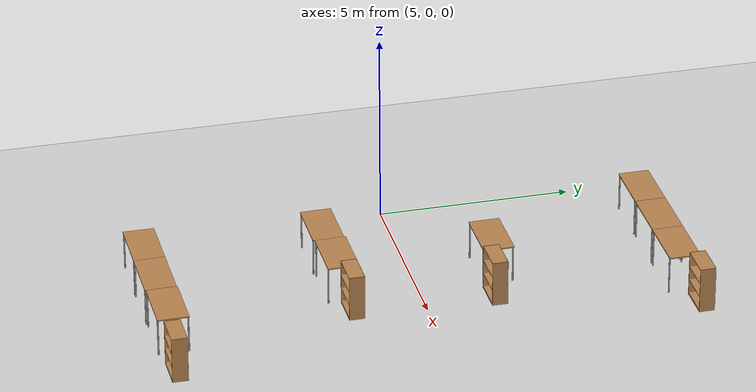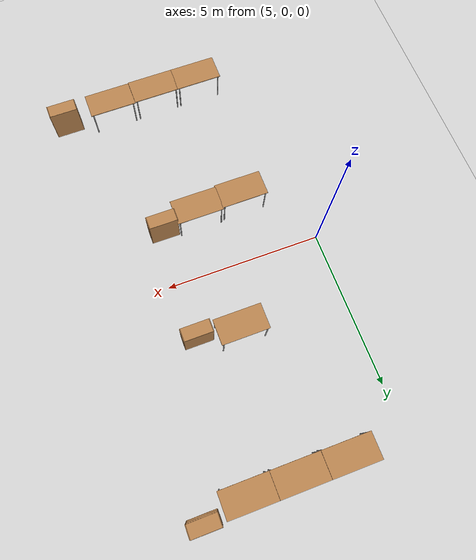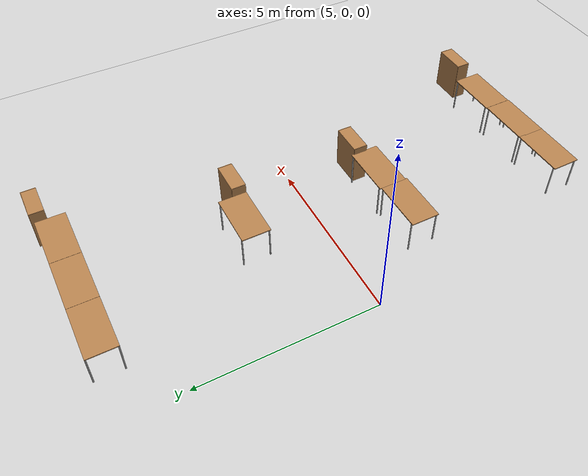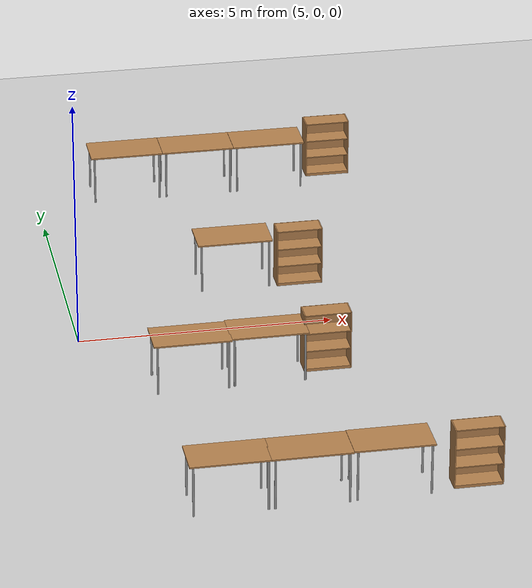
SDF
<sdf version="1.6">
 <world name="default">
  <model name="ground_plane">
   <static>1</static>
   <link name="link">
    <collision name="collision">
     <geometry><plane><normal>0 0 1</normal><size>100 100</size></plane></geometry>
     <surface>
      <contact><collide_bitmask>65535</collide_bitmask></contact>
      <friction><ode><mu>100</mu><mu2>50</mu2></ode></friction>
     </surface>
    </collision>
    <visual name="visual">
     <cast_shadows>0</cast_shadows>
     <geometry><plane><normal>0 0 1</normal><size>100 100</size></plane></geometry>
     <material>
      <script><uri>file://media/materials/scripts/gazebo.material</uri><name>Gazebo/Grey</name></script>
     </material>
    </visual>
   </link>
  </model>
  <model name="table_14">
   <static>1</static>
   <link name="link">
    <collision name="surface">
     <pose>0 0 1 0 -0 0</pose>
     <geometry><box><size>1.5 0.8 0.03</size></box></geometry>
     <surface><friction><ode><mu>0.6</mu><mu2>0.6</mu2></ode></friction></surface>
    </collision>
    <visual name="visual1">
     <pose>0 0 1 0 -0 0</pose>
     <geometry><box><size>1.5 0.8 0.03</size></box></geometry>
     <material>
      <script><uri>file://media/materials/scripts/gazebo.material</uri><name>Gazebo/Wood</name></script>
     </material>
    </visual>
    <collision name="front_left_leg">
     <pose>0.68 0.38 0.5 0 -0 0</pose>
     <geometry><cylinder><radius>0.02</radius><length>1</length></cylinder></geometry>
    </collision>
    <visual name="front_left_leg">
     <pose>0.68 0.38 0.5 0 -0 0</pose>
     <geometry><cylinder><radius>0.02</radius><length>1</length></cylinder></geometry>
     <material>
      <script><uri>file://media/materials/scripts/gazebo.material</uri><name>Gazebo/Grey</name></script>
     </material>
    </visual>
    <collision name="front_right_leg">
     <pose>0.68 -0.38 0.5 0 -0 0</pose>
     <geometry><cylinder><radius>0.02</radius><length>1</length></cylinder></geometry>
    </collision>
    <visual name="front_right_leg">
     <pose>0.68 -0.38 0.5 0 -0 0</pose>
     <geometry><cylinder><radius>0.02</radius><length>1</length></cylinder></geometry>
     <material>
      <script><uri>file://media/materials/scripts/gazebo.material</uri><name>Gazebo/Grey</name></script>
     </material>
    </visual>
    <collision name="back_right_leg">
     <pose>-0.68 -0.38 0.5 0 -0 0</pose>
     <geometry><cylinder><radius>0.02</radius><length>1</length></cylinder></geometry>
    </collision>
    <visual name="back_right_leg">
     <pose>-0.68 -0.38 0.5 0 -0 0</pose>
     <geometry><cylinder><radius>0.02</radius><length>1</length></cylinder></geometry>
     <material>
      <script><uri>file://media/materials/scripts/gazebo.material</uri><name>Gazebo/Grey</name></script>
     </material>
    </visual>
    <collision name="back_left_leg">
     <pose>-0.68 0.38 0.5 0 -0 0</pose>
     <geometry><cylinder><radius>0.02</radius><length>1</length></cylinder></geometry>
    </collision>
    <visual name="back_left_leg">
     <pose>-0.68 0.38 0.5 0 -0 0</pose>
     <geometry><cylinder><radius>0.02</radius><length>1</length></cylinder></geometry>
     <material>
      <script><uri>file://media/materials/scripts/gazebo.material</uri><name>Gazebo/Grey</name></script>
     </material>
    </visual>
   </link>
   <pose>6.89743 6.45221 0 0 -0 0</pose>
  </model>
  <model name="table_15">
   <static>1</static>
   <link name="link">
    <collision name="surface">
     <pose>0 0 1 0 -0 0</pose>
     <geometry><box><size>1.5 0.8 0.03</size></box></geometry>
     <surface><friction><ode><mu>0.6</mu><mu2>0.6</mu2></ode></friction></surface>
    </collision>
    <visual name="visual1">
     <pose>0 0 1 0 -0 0</pose>
     <geometry><box><size>1.5 0.8 0.03</size></box></geometry>
     <material>
      <script><uri>file://media/materials/scripts/gazebo.material</uri><name>Gazebo/Wood</name></script>
     </material>
    </visual>
    <collision name="front_left_leg">
     <pose>0.68 0.38 0.5 0 -0 0</pose>
     <geometry><cylinder><radius>0.02</radius><length>1</length></cylinder></geometry>
    </collision>
    <visual name="front_left_leg">
     <pose>0.68 0.38 0.5 0 -0 0</pose>
     <geometry><cylinder><radius>0.02</radius><length>1</length></cylinder></geometry>
     <material>
      <script><uri>file://media/materials/scripts/gazebo.material</uri><name>Gazebo/Grey</name></script>
     </material>
    </visual>
    <collision name="front_right_leg">
     <pose>0.68 -0.38 0.5 0 -0 0</pose>
     <geometry><cylinder><radius>0.02</radius><length>1</length></cylinder></geometry>
    </collision>
    <visual name="front_right_leg">
     <pose>0.68 -0.38 0.5 0 -0 0</pose>
     <geometry><cylinder><radius>0.02</radius><length>1</length></cylinder></geometry>
     <material>
      <script><uri>file://media/materials/scripts/gazebo.material</uri><name>Gazebo/Grey</name></script>
     </material>
    </visual>
    <collision name="back_right_leg">
     <pose>-0.68 -0.38 0.5 0 -0 0</pose>
     <geometry><cylinder><radius>0.02</radius><length>1</length></cylinder></geometry>
    </collision>
    <visual name="back_right_leg">
     <pose>-0.68 -0.38 0.5 0 -0 0</pose>
     <geometry><cylinder><radius>0.02</radius><length>1</length></cylinder></geometry>
     <material>
      <script><uri>file://media/materials/scripts/gazebo.material</uri><name>Gazebo/Grey</name></script>
     </material>
    </visual>
    <collision name="back_left_leg">
     <pose>-0.68 0.38 0.5 0 -0 0</pose>
     <geometry><cylinder><radius>0.02</radius><length>1</length></cylinder></geometry>
    </collision>
    <visual name="back_left_leg">
     <pose>-0.68 0.38 0.5 0 -0 0</pose>
     <geometry><cylinder><radius>0.02</radius><length>1</length></cylinder></geometry>
     <material>
      <script><uri>file://media/materials/scripts/gazebo.material</uri><name>Gazebo/Grey</name></script>
     </material>
    </visual>
   </link>
   <pose>8.40031 6.45221 0 0 -0 0</pose>
  </model>
  <model name="table_16">
   <static>1</static>
   <link name="link">
    <collision name="surface">
     <pose>0 0 1 0 -0 0</pose>
     <geometry><box><size>1.5 0.8 0.03</size></box></geometry>
     <surface><friction><ode><mu>0.6</mu><mu2>0.6</mu2></ode></friction></surface>
    </collision>
    <visual name="visual1">
     <pose>0 0 1 0 -0 0</pose>
     <geometry><box><size>1.5 0.8 0.03</size></box></geometry>
     <material>
      <script><uri>file://media/materials/scripts/gazebo.material</uri><name>Gazebo/Wood</name></script>
     </material>
    </visual>
    <collision name="front_left_leg">
     <pose>0.68 0.38 0.5 0 -0 0</pose>
     <geometry><cylinder><radius>0.02</radius><length>1</length></cylinder></geometry>
    </collision>
    <visual name="front_left_leg">
     <pose>0.68 0.38 0.5 0 -0 0</pose>
     <geometry><cylinder><radius>0.02</radius><length>1</length></cylinder></geometry>
     <material>
      <script><uri>file://media/materials/scripts/gazebo.material</uri><name>Gazebo/Grey</name></script>
     </material>
    </visual>
    <collision name="front_right_leg">
     <pose>0.68 -0.38 0.5 0 -0 0</pose>
     <geometry><cylinder><radius>0.02</radius><length>1</length></cylinder></geometry>
    </collision>
    <visual name="front_right_leg">
     <pose>0.68 -0.38 0.5 0 -0 0</pose>
     <geometry><cylinder><radius>0.02</radius><length>1</length></cylinder></geometry>
     <material>
      <script><uri>file://media/materials/scripts/gazebo.material</uri><name>Gazebo/Grey</name></script>
     </material>
    </visual>
    <collision name="back_right_leg">
     <pose>-0.68 -0.38 0.5 0 -0 0</pose>
     <geometry><cylinder><radius>0.02</radius><length>1</length></cylinder></geometry>
    </collision>
    <visual name="back_right_leg">
     <pose>-0.68 -0.38 0.5 0 -0 0</pose>
     <geometry><cylinder><radius>0.02</radius><length>1</length></cylinder></geometry>
     <material>
      <script><uri>file://media/materials/scripts/gazebo.material</uri><name>Gazebo/Grey</name></script>
     </material>
    </visual>
    <collision name="back_left_leg">
     <pose>-0.68 0.38 0.5 0 -0 0</pose>
     <geometry><cylinder><radius>0.02</radius><length>1</length></cylinder></geometry>
    </collision>
    <visual name="back_left_leg">
     <pose>-0.68 0.38 0.5 0 -0 0</pose>
     <geometry><cylinder><radius>0.02</radius><length>1</length></cylinder></geometry>
     <material>
      <script><uri>file://media/materials/scripts/gazebo.material</uri><name>Gazebo/Grey</name></script>
     </material>
    </visual>
   </link>
   <pose>9.9032 6.45221 0 0 -0 0</pose>
  </model>
  <model name="bookshelf_6">
   <static>1</static>
   <link name="link">
    <inertial><mass>1</mass></inertial>
    <collision name="back">
     <pose>0 0.005 0.6 0 -0 0</pose>
     <geometry><box><size>0.9 0.01 1.2</size></box></geometry>
    </collision>
    <visual name="visual1">
     <pose>0 0.005 0.6 0 -0 0</pose>
     <geometry><box><size>0.9 0.01 1.2</size></box></geometry>
     <material>
      <script><uri>file://media/materials/scripts/gazebo.material</uri><name>Gazebo/Wood</name></script>
     </material>
    </visual>
    <collision name="left_side">
     <pose>0.45 -0.195 0.6 0 -0 0</pose>
     <geometry><box><size>0.02 0.4 1.2</size></box></geometry>
    </collision>
    <visual name="visual2">
     <pose>0.45 -0.195 0.6 0 -0 0</pose>
     <geometry><box><size>0.02 0.4 1.2</size></box></geometry>
     <material>
      <script><uri>file://media/materials/scripts/gazebo.material</uri><name>Gazebo/Wood</name></script>
     </material>
    </visual>
    <collision name="right_side">
     <pose>-0.45 -0.195 0.6 0 -0 0</pose>
     <geometry><box><size>0.02 0.4 1.2</size></box></geometry>
    </collision>
    <visual name="visual3">
     <pose>-0.45 -0.195 0.6 0 -0 0</pose>
     <geometry><box><size>0.02 0.4 1.2</size></box></geometry>
     <material>
      <script><uri>file://media/materials/scripts/gazebo.material</uri><name>Gazebo/Wood</name></script>
     </material>
    </visual>
    <collision name="bottom">
     <pose>0 -0.195 0.03 0 -0 0</pose>
     <geometry><box><size>0.88 0.4 0.06</size></box></geometry>
    </collision>
    <visual name="visual4">
     <pose>0 -0.195 0.03 0 -0 0</pose>
     <geometry><box><size>0.88 0.4 0.06</size></box></geometry>
     <material>
      <script><uri>file://media/materials/scripts/gazebo.material</uri><name>Gazebo/Wood</name></script>
     </material>
    </visual>
    <collision name="top">
     <pose>0 -0.195 1.19 0 -0 0</pose>
     <geometry><box><size>0.88 0.4 0.02</size></box></geometry>
    </collision>
    <visual name="visual5">
     <pose>0 -0.195 1.19 0 -0 0</pose>
     <geometry><box><size>0.88 0.4 0.02</size></box></geometry>
     <material>
      <script><uri>file://media/materials/scripts/gazebo.material</uri><name>Gazebo/Wood</name></script>
     </material>
    </visual>
    <collision name="low_shelf">
     <pose>0 -0.195 0.43 0 -0 0</pose>
     <geometry><box><size>0.88 0.4 0.02</size></box></geometry>
    </collision>
    <visual name="visual6">
     <pose>0 -0.195 0.43 0 -0 0</pose>
     <geometry><box><size>0.88 0.4 0.02</size></box></geometry>
     <material>
      <script><uri>file://media/materials/scripts/gazebo.material</uri><name>Gazebo/Wood</name></script>
     </material>
    </visual>
    <collision name="high_shelf">
     <pose>0 -0.195 0.8 0 -0 0</pose>
     <geometry><box><size>0.88 0.4 0.02</size></box></geometry>
    </collision>
    <visual name="visual7">
     <pose>0 -0.195 0.8 0 -0 0</pose>
     <geometry><box><size>0.88 0.4 0.02</size></box></geometry>
     <material>
      <script><uri>file://media/materials/scripts/gazebo.material</uri><name>Gazebo/Wood</name></script>
     </material>
    </visual>
   </link>
   <pose>11.244 6.91461 0 0 -0 0</pose>
  </model>
  <model name="bookshelf_7">
   <static>1</static>
   <link name="link">
    <inertial><mass>1</mass></inertial>
    <collision name="back">
     <pose>0 0.005 0.6 0 -0 0</pose>
     <geometry><box><size>0.9 0.01 1.2</size></box></geometry>
    </collision>
    <visual name="visual1">
     <pose>0 0.005 0.6 0 -0 0</pose>
     <geometry><box><size>0.9 0.01 1.2</size></box></geometry>
     <material>
      <script><uri>file://media/materials/scripts/gazebo.material</uri><name>Gazebo/Wood</name></script>
     </material>
    </visual>
    <collision name="left_side">
     <pose>0.45 -0.195 0.6 0 -0 0</pose>
     <geometry><box><size>0.02 0.4 1.2</size></box></geometry>
    </collision>
    <visual name="visual2">
     <pose>0.45 -0.195 0.6 0 -0 0</pose>
     <geometry><box><size>0.02 0.4 1.2</size></box></geometry>
     <material>
      <script><uri>file://media/materials/scripts/gazebo.material</uri><name>Gazebo/Wood</name></script>
     </material>
    </visual>
    <collision name="right_side">
     <pose>-0.45 -0.195 0.6 0 -0 0</pose>
     <geometry><box><size>0.02 0.4 1.2</size></box></geometry>
    </collision>
    <visual name="visual3">
     <pose>-0.45 -0.195 0.6 0 -0 0</pose>
     <geometry><box><size>0.02 0.4 1.2</size></box></geometry>
     <material>
      <script><uri>file://media/materials/scripts/gazebo.material</uri><name>Gazebo/Wood</name></script>
     </material>
    </visual>
    <collision name="bottom">
     <pose>0 -0.195 0.03 0 -0 0</pose>
     <geometry><box><size>0.88 0.4 0.06</size></box></geometry>
    </collision>
    <visual name="visual4">
     <pose>0 -0.195 0.03 0 -0 0</pose>
     <geometry><box><size>0.88 0.4 0.06</size></box></geometry>
     <material>
      <script><uri>file://media/materials/scripts/gazebo.material</uri><name>Gazebo/Wood</name></script>
     </material>
    </visual>
    <collision name="top">
     <pose>0 -0.195 1.19 0 -0 0</pose>
     <geometry><box><size>0.88 0.4 0.02</size></box></geometry>
    </collision>
    <visual name="visual5">
     <pose>0 -0.195 1.19 0 -0 0</pose>
     <geometry><box><size>0.88 0.4 0.02</size></box></geometry>
     <material>
      <script><uri>file://media/materials/scripts/gazebo.material</uri><name>Gazebo/Wood</name></script>
     </material>
    </visual>
    <collision name="low_shelf">
     <pose>0 -0.195 0.43 0 -0 0</pose>
     <geometry><box><size>0.88 0.4 0.02</size></box></geometry>
    </collision>
    <visual name="visual6">
     <pose>0 -0.195 0.43 0 -0 0</pose>
     <geometry><box><size>0.88 0.4 0.02</size></box></geometry>
     <material>
      <script><uri>file://media/materials/scripts/gazebo.material</uri><name>Gazebo/Wood</name></script>
     </material>
    </visual>
    <collision name="high_shelf">
     <pose>0 -0.195 0.8 0 -0 0</pose>
     <geometry><box><size>0.88 0.4 0.02</size></box></geometry>
    </collision>
    <visual name="visual7">
     <pose>0 -0.195 0.8 0 -0 0</pose>
     <geometry><box><size>0.88 0.4 0.02</size></box></geometry>
     <material>
      <script><uri>file://media/materials/scripts/gazebo.material</uri><name>Gazebo/Wood</name></script>
     </material>
    </visual>
   </link>
   <pose>9.69495 2.01309 0 0 -0 0</pose>
  </model>
  <model name="table_17">
   <static>1</static>
   <link name="link">
    <collision name="surface">
     <pose>0 0 1 0 -0 0</pose>
     <geometry><box><size>1.5 0.8 0.03</size></box></geometry>
     <surface><friction><ode><mu>0.6</mu><mu2>0.6</mu2></ode></friction></surface>
    </collision>
    <visual name="visual1">
     <pose>0 0 1 0 -0 0</pose>
     <geometry><box><size>1.5 0.8 0.03</size></box></geometry>
     <material>
      <script><uri>file://media/materials/scripts/gazebo.material</uri><name>Gazebo/Wood</name></script>
     </material>
    </visual>
    <collision name="front_left_leg">
     <pose>0.68 0.38 0.5 0 -0 0</pose>
     <geometry><cylinder><radius>0.02</radius><length>1</length></cylinder></geometry>
    </collision>
    <visual name="front_left_leg">
     <pose>0.68 0.38 0.5 0 -0 0</pose>
     <geometry><cylinder><radius>0.02</radius><length>1</length></cylinder></geometry>
     <material>
      <script><uri>file://media/materials/scripts/gazebo.material</uri><name>Gazebo/Grey</name></script>
     </material>
    </visual>
    <collision name="front_right_leg">
     <pose>0.68 -0.38 0.5 0 -0 0</pose>
     <geometry><cylinder><radius>0.02</radius><length>1</length></cylinder></geometry>
    </collision>
    <visual name="front_right_leg">
     <pose>0.68 -0.38 0.5 0 -0 0</pose>
     <geometry><cylinder><radius>0.02</radius><length>1</length></cylinder></geometry>
     <material>
      <script><uri>file://media/materials/scripts/gazebo.material</uri><name>Gazebo/Grey</name></script>
     </material>
    </visual>
    <collision name="back_right_leg">
     <pose>-0.68 -0.38 0.5 0 -0 0</pose>
     <geometry><cylinder><radius>0.02</radius><length>1</length></cylinder></geometry>
    </collision>
    <visual name="back_right_leg">
     <pose>-0.68 -0.38 0.5 0 -0 0</pose>
     <geometry><cylinder><radius>0.02</radius><length>1</length></cylinder></geometry>
     <material>
      <script><uri>file://media/materials/scripts/gazebo.material</uri><name>Gazebo/Grey</name></script>
     </material>
    </visual>
    <collision name="back_left_leg">
     <pose>-0.68 0.38 0.5 0 -0 0</pose>
     <geometry><cylinder><radius>0.02</radius><length>1</length></cylinder></geometry>
    </collision>
    <visual name="back_left_leg">
     <pose>-0.68 0.38 0.5 0 -0 0</pose>
     <geometry><cylinder><radius>0.02</radius><length>1</length></cylinder></geometry>
     <material>
      <script><uri>file://media/materials/scripts/gazebo.material</uri><name>Gazebo/Grey</name></script>
     </material>
    </visual>
   </link>
   <pose>8.40313 2.05134 0 0 -0 0</pose>
  </model>
  <model name="table_18">
   <static>1</static>
   <link name="link">
    <collision name="surface">
     <pose>0 0 1 0 -0 0</pose>
     <geometry><box><size>1.5 0.8 0.03</size></box></geometry>
     <surface><friction><ode><mu>0.6</mu><mu2>0.6</mu2></ode></friction></surface>
    </collision>
    <visual name="visual1">
     <pose>0 0 1 0 -0 0</pose>
     <geometry><box><size>1.5 0.8 0.03</size></box></geometry>
     <material>
      <script><uri>file://media/materials/scripts/gazebo.material</uri><name>Gazebo/Wood</name></script>
     </material>
    </visual>
    <collision name="front_left_leg">
     <pose>0.68 0.38 0.5 0 -0 0</pose>
     <geometry><cylinder><radius>0.02</radius><length>1</length></cylinder></geometry>
    </collision>
    <visual name="front_left_leg">
     <pose>0.68 0.38 0.5 0 -0 0</pose>
     <geometry><cylinder><radius>0.02</radius><length>1</length></cylinder></geometry>
     <material>
      <script><uri>file://media/materials/scripts/gazebo.material</uri><name>Gazebo/Grey</name></script>
     </material>
    </visual>
    <collision name="front_right_leg">
     <pose>0.68 -0.38 0.5 0 -0 0</pose>
     <geometry><cylinder><radius>0.02</radius><length>1</length></cylinder></geometry>
    </collision>
    <visual name="front_right_leg">
     <pose>0.68 -0.38 0.5 0 -0 0</pose>
     <geometry><cylinder><radius>0.02</radius><length>1</length></cylinder></geometry>
     <material>
      <script><uri>file://media/materials/scripts/gazebo.material</uri><name>Gazebo/Grey</name></script>
     </material>
    </visual>
    <collision name="back_right_leg">
     <pose>-0.68 -0.38 0.5 0 -0 0</pose>
     <geometry><cylinder><radius>0.02</radius><length>1</length></cylinder></geometry>
    </collision>
    <visual name="back_right_leg">
     <pose>-0.68 -0.38 0.5 0 -0 0</pose>
     <geometry><cylinder><radius>0.02</radius><length>1</length></cylinder></geometry>
     <material>
      <script><uri>file://media/materials/scripts/gazebo.material</uri><name>Gazebo/Grey</name></script>
     </material>
    </visual>
    <collision name="back_left_leg">
     <pose>-0.68 0.38 0.5 0 -0 0</pose>
     <geometry><cylinder><radius>0.02</radius><length>1</length></cylinder></geometry>
    </collision>
    <visual name="back_left_leg">
     <pose>-0.68 0.38 0.5 0 -0 0</pose>
     <geometry><cylinder><radius>0.02</radius><length>1</length></cylinder></geometry>
     <material>
      <script><uri>file://media/materials/scripts/gazebo.material</uri><name>Gazebo/Grey</name></script>
     </material>
    </visual>
   </link>
   <pose>6.87495 -1.97221 0 0 -0 0</pose>
  </model>
  <model name="table_19">
   <static>1</static>
   <link name="link">
    <collision name="surface">
     <pose>0 0 1 0 -0 0</pose>
     <geometry><box><size>1.5 0.8 0.03</size></box></geometry>
     <surface><friction><ode><mu>0.6</mu><mu2>0.6</mu2></ode></friction></surface>
    </collision>
    <visual name="visual1">
     <pose>0 0 1 0 -0 0</pose>
     <geometry><box><size>1.5 0.8 0.03</size></box></geometry>
     <material>
      <script><uri>file://media/materials/scripts/gazebo.material</uri><name>Gazebo/Wood</name></script>
     </material>
    </visual>
    <collision name="front_left_leg">
     <pose>0.68 0.38 0.5 0 -0 0</pose>
     <geometry><cylinder><radius>0.02</radius><length>1</length></cylinder></geometry>
    </collision>
    <visual name="front_left_leg">
     <pose>0.68 0.38 0.5 0 -0 0</pose>
     <geometry><cylinder><radius>0.02</radius><length>1</length></cylinder></geometry>
     <material>
      <script><uri>file://media/materials/scripts/gazebo.material</uri><name>Gazebo/Grey</name></script>
     </material>
    </visual>
    <collision name="front_right_leg">
     <pose>0.68 -0.38 0.5 0 -0 0</pose>
     <geometry><cylinder><radius>0.02</radius><length>1</length></cylinder></geometry>
    </collision>
    <visual name="front_right_leg">
     <pose>0.68 -0.38 0.5 0 -0 0</pose>
     <geometry><cylinder><radius>0.02</radius><length>1</length></cylinder></geometry>
     <material>
      <script><uri>file://media/materials/scripts/gazebo.material</uri><name>Gazebo/Grey</name></script>
     </material>
    </visual>
    <collision name="back_right_leg">
     <pose>-0.68 -0.38 0.5 0 -0 0</pose>
     <geometry><cylinder><radius>0.02</radius><length>1</length></cylinder></geometry>
    </collision>
    <visual name="back_right_leg">
     <pose>-0.68 -0.38 0.5 0 -0 0</pose>
     <geometry><cylinder><radius>0.02</radius><length>1</length></cylinder></geometry>
     <material>
      <script><uri>file://media/materials/scripts/gazebo.material</uri><name>Gazebo/Grey</name></script>
     </material>
    </visual>
    <collision name="back_left_leg">
     <pose>-0.68 0.38 0.5 0 -0 0</pose>
     <geometry><cylinder><radius>0.02</radius><length>1</length></cylinder></geometry>
    </collision>
    <visual name="back_left_leg">
     <pose>-0.68 0.38 0.5 0 -0 0</pose>
     <geometry><cylinder><radius>0.02</radius><length>1</length></cylinder></geometry>
     <material>
      <script><uri>file://media/materials/scripts/gazebo.material</uri><name>Gazebo/Grey</name></script>
     </material>
    </visual>
   </link>
   <pose>8.35491 -1.92599 0 0 -0 0</pose>
  </model>
  <model name="table_20">
   <static>1</static>
   <link name="link">
    <collision name="surface">
     <pose>0 0 1 0 -0 0</pose>
     <geometry><box><size>1.5 0.8 0.03</size></box></geometry>
     <surface><friction><ode><mu>0.6</mu><mu2>0.6</mu2></ode></friction></surface>
    </collision>
    <visual name="visual1">
     <pose>0 0 1 0 -0 0</pose>
     <geometry><box><size>1.5 0.8 0.03</size></box></geometry>
     <material>
      <script><uri>file://media/materials/scripts/gazebo.material</uri><name>Gazebo/Wood</name></script>
     </material>
    </visual>
    <collision name="front_left_leg">
     <pose>0.68 0.38 0.5 0 -0 0</pose>
     <geometry><cylinder><radius>0.02</radius><length>1</length></cylinder></geometry>
    </collision>
    <visual name="front_left_leg">
     <pose>0.68 0.38 0.5 0 -0 0</pose>
     <geometry><cylinder><radius>0.02</radius><length>1</length></cylinder></geometry>
     <material>
      <script><uri>file://media/materials/scripts/gazebo.material</uri><name>Gazebo/Grey</name></script>
     </material>
    </visual>
    <collision name="front_right_leg">
     <pose>0.68 -0.38 0.5 0 -0 0</pose>
     <geometry><cylinder><radius>0.02</radius><length>1</length></cylinder></geometry>
    </collision>
    <visual name="front_right_leg">
     <pose>0.68 -0.38 0.5 0 -0 0</pose>
     <geometry><cylinder><radius>0.02</radius><length>1</length></cylinder></geometry>
     <material>
      <script><uri>file://media/materials/scripts/gazebo.material</uri><name>Gazebo/Grey</name></script>
     </material>
    </visual>
    <collision name="back_right_leg">
     <pose>-0.68 -0.38 0.5 0 -0 0</pose>
     <geometry><cylinder><radius>0.02</radius><length>1</length></cylinder></geometry>
    </collision>
    <visual name="back_right_leg">
     <pose>-0.68 -0.38 0.5 0 -0 0</pose>
     <geometry><cylinder><radius>0.02</radius><length>1</length></cylinder></geometry>
     <material>
      <script><uri>file://media/materials/scripts/gazebo.material</uri><name>Gazebo/Grey</name></script>
     </material>
    </visual>
    <collision name="back_left_leg">
     <pose>-0.68 0.38 0.5 0 -0 0</pose>
     <geometry><cylinder><radius>0.02</radius><length>1</length></cylinder></geometry>
    </collision>
    <visual name="back_left_leg">
     <pose>-0.68 0.38 0.5 0 -0 0</pose>
     <geometry><cylinder><radius>0.02</radius><length>1</length></cylinder></geometry>
     <material>
      <script><uri>file://media/materials/scripts/gazebo.material</uri><name>Gazebo/Grey</name></script>
     </material>
    </visual>
   </link>
   <pose>6.78271 -6.52703 0 0 -0 0</pose>
  </model>
  <model name="table_21">
   <static>1</static>
   <link name="link">
    <collision name="surface">
     <pose>0 0 1 0 -0 0</pose>
     <geometry><box><size>1.5 0.8 0.03</size></box></geometry>
     <surface><friction><ode><mu>0.6</mu><mu2>0.6</mu2></ode></friction></surface>
    </collision>
    <visual name="visual1">
     <pose>0 0 1 0 -0 0</pose>
     <geometry><box><size>1.5 0.8 0.03</size></box></geometry>
     <material>
      <script><uri>file://media/materials/scripts/gazebo.material</uri><name>Gazebo/Wood</name></script>
     </material>
    </visual>
    <collision name="front_left_leg">
     <pose>0.68 0.38 0.5 0 -0 0</pose>
     <geometry><cylinder><radius>0.02</radius><length>1</length></cylinder></geometry>
    </collision>
    <visual name="front_left_leg">
     <pose>0.68 0.38 0.5 0 -0 0</pose>
     <geometry><cylinder><radius>0.02</radius><length>1</length></cylinder></geometry>
     <material>
      <script><uri>file://media/materials/scripts/gazebo.material</uri><name>Gazebo/Grey</name></script>
     </material>
    </visual>
    <collision name="front_right_leg">
     <pose>0.68 -0.38 0.5 0 -0 0</pose>
     <geometry><cylinder><radius>0.02</radius><length>1</length></cylinder></geometry>
    </collision>
    <visual name="front_right_leg">
     <pose>0.68 -0.38 0.5 0 -0 0</pose>
     <geometry><cylinder><radius>0.02</radius><length>1</length></cylinder></geometry>
     <material>
      <script><uri>file://media/materials/scripts/gazebo.material</uri><name>Gazebo/Grey</name></script>
     </material>
    </visual>
    <collision name="back_right_leg">
     <pose>-0.68 -0.38 0.5 0 -0 0</pose>
     <geometry><cylinder><radius>0.02</radius><length>1</length></cylinder></geometry>
    </collision>
    <visual name="back_right_leg">
     <pose>-0.68 -0.38 0.5 0 -0 0</pose>
     <geometry><cylinder><radius>0.02</radius><length>1</length></cylinder></geometry>
     <material>
      <script><uri>file://media/materials/scripts/gazebo.material</uri><name>Gazebo/Grey</name></script>
     </material>
    </visual>
    <collision name="back_left_leg">
     <pose>-0.68 0.38 0.5 0 -0 0</pose>
     <geometry><cylinder><radius>0.02</radius><length>1</length></cylinder></geometry>
    </collision>
    <visual name="back_left_leg">
     <pose>-0.68 0.38 0.5 0 -0 0</pose>
     <geometry><cylinder><radius>0.02</radius><length>1</length></cylinder></geometry>
     <material>
      <script><uri>file://media/materials/scripts/gazebo.material</uri><name>Gazebo/Grey</name></script>
     </material>
    </visual>
   </link>
   <pose>8.26226 -6.52703 0 0 -0 0</pose>
  </model>
  <model name="table_22">
   <static>1</static>
   <link name="link">
    <collision name="surface">
     <pose>0 0 1 0 -0 0</pose>
     <geometry><box><size>1.5 0.8 0.03</size></box></geometry>
     <surface><friction><ode><mu>0.6</mu><mu2>0.6</mu2></ode></friction></surface>
    </collision>
    <visual name="visual1">
     <pose>0 0 1 0 -0 0</pose>
     <geometry><box><size>1.5 0.8 0.03</size></box></geometry>
     <material>
      <script><uri>file://media/materials/scripts/gazebo.material</uri><name>Gazebo/Wood</name></script>
     </material>
    </visual>
    <collision name="front_left_leg">
     <pose>0.68 0.38 0.5 0 -0 0</pose>
     <geometry><cylinder><radius>0.02</radius><length>1</length></cylinder></geometry>
    </collision>
    <visual name="front_left_leg">
     <pose>0.68 0.38 0.5 0 -0 0</pose>
     <geometry><cylinder><radius>0.02</radius><length>1</length></cylinder></geometry>
     <material>
      <script><uri>file://media/materials/scripts/gazebo.material</uri><name>Gazebo/Grey</name></script>
     </material>
    </visual>
    <collision name="front_right_leg">
     <pose>0.68 -0.38 0.5 0 -0 0</pose>
     <geometry><cylinder><radius>0.02</radius><length>1</length></cylinder></geometry>
    </collision>
    <visual name="front_right_leg">
     <pose>0.68 -0.38 0.5 0 -0 0</pose>
     <geometry><cylinder><radius>0.02</radius><length>1</length></cylinder></geometry>
     <material>
      <script><uri>file://media/materials/scripts/gazebo.material</uri><name>Gazebo/Grey</name></script>
     </material>
    </visual>
    <collision name="back_right_leg">
     <pose>-0.68 -0.38 0.5 0 -0 0</pose>
     <geometry><cylinder><radius>0.02</radius><length>1</length></cylinder></geometry>
    </collision>
    <visual name="back_right_leg">
     <pose>-0.68 -0.38 0.5 0 -0 0</pose>
     <geometry><cylinder><radius>0.02</radius><length>1</length></cylinder></geometry>
     <material>
      <script><uri>file://media/materials/scripts/gazebo.material</uri><name>Gazebo/Grey</name></script>
     </material>
    </visual>
    <collision name="back_left_leg">
     <pose>-0.68 0.38 0.5 0 -0 0</pose>
     <geometry><cylinder><radius>0.02</radius><length>1</length></cylinder></geometry>
    </collision>
    <visual name="back_left_leg">
     <pose>-0.68 0.38 0.5 0 -0 0</pose>
     <geometry><cylinder><radius>0.02</radius><length>1</length></cylinder></geometry>
     <material>
      <script><uri>file://media/materials/scripts/gazebo.material</uri><name>Gazebo/Grey</name></script>
     </material>
    </visual>
   </link>
   <pose>9.76518 -6.50392 0 0 -0 0</pose>
  </model>
  <model name="bookshelf_8">
   <static>1</static>
   <link name="link">
    <inertial><mass>1</mass></inertial>
    <collision name="back">
     <pose>0 0.005 0.6 0 -0 0</pose>
     <geometry><box><size>0.9 0.01 1.2</size></box></geometry>
    </collision>
    <visual name="visual1">
     <pose>0 0.005 0.6 0 -0 0</pose>
     <geometry><box><size>0.9 0.01 1.2</size></box></geometry>
     <material>
      <script><uri>file://media/materials/scripts/gazebo.material</uri><name>Gazebo/Wood</name></script>
     </material>
    </visual>
    <collision name="left_side">
     <pose>0.45 -0.195 0.6 0 -0 0</pose>
     <geometry><box><size>0.02 0.4 1.2</size></box></geometry>
    </collision>
    <visual name="visual2">
     <pose>0.45 -0.195 0.6 0 -0 0</pose>
     <geometry><box><size>0.02 0.4 1.2</size></box></geometry>
     <material>
      <script><uri>file://media/materials/scripts/gazebo.material</uri><name>Gazebo/Wood</name></script>
     </material>
    </visual>
    <collision name="right_side">
     <pose>-0.45 -0.195 0.6 0 -0 0</pose>
     <geometry><box><size>0.02 0.4 1.2</size></box></geometry>
    </collision>
    <visual name="visual3">
     <pose>-0.45 -0.195 0.6 0 -0 0</pose>
     <geometry><box><size>0.02 0.4 1.2</size></box></geometry>
     <material>
      <script><uri>file://media/materials/scripts/gazebo.material</uri><name>Gazebo/Wood</name></script>
     </material>
    </visual>
    <collision name="bottom">
     <pose>0 -0.195 0.03 0 -0 0</pose>
     <geometry><box><size>0.88 0.4 0.06</size></box></geometry>
    </collision>
    <visual name="visual4">
     <pose>0 -0.195 0.03 0 -0 0</pose>
     <geometry><box><size>0.88 0.4 0.06</size></box></geometry>
     <material>
      <script><uri>file://media/materials/scripts/gazebo.material</uri><name>Gazebo/Wood</name></script>
     </material>
    </visual>
    <collision name="top">
     <pose>0 -0.195 1.19 0 -0 0</pose>
     <geometry><box><size>0.88 0.4 0.02</size></box></geometry>
    </collision>
    <visual name="visual5">
     <pose>0 -0.195 1.19 0 -0 0</pose>
     <geometry><box><size>0.88 0.4 0.02</size></box></geometry>
     <material>
      <script><uri>file://media/materials/scripts/gazebo.material</uri><name>Gazebo/Wood</name></script>
     </material>
    </visual>
    <collision name="low_shelf">
     <pose>0 -0.195 0.43 0 -0 0</pose>
     <geometry><box><size>0.88 0.4 0.02</size></box></geometry>
    </collision>
    <visual name="visual6">
     <pose>0 -0.195 0.43 0 -0 0</pose>
     <geometry><box><size>0.88 0.4 0.02</size></box></geometry>
     <material>
      <script><uri>file://media/materials/scripts/gazebo.material</uri><name>Gazebo/Wood</name></script>
     </material>
    </visual>
    <collision name="high_shelf">
     <pose>0 -0.195 0.8 0 -0 0</pose>
     <geometry><box><size>0.88 0.4 0.02</size></box></geometry>
    </collision>
    <visual name="visual7">
     <pose>0 -0.195 0.8 0 -0 0</pose>
     <geometry><box><size>0.88 0.4 0.02</size></box></geometry>
     <material>
      <script><uri>file://media/materials/scripts/gazebo.material</uri><name>Gazebo/Wood</name></script>
     </material>
    </visual>
   </link>
   <pose>11.3376 -6.41147 0 0 -0 0</pose>
  </model>
  <model name="bookshelf_9">
   <static>1</static>
   <link name="link">
    <inertial><mass>1</mass></inertial>
    <collision name="back">
     <pose>0 0.005 0.6 0 -0 0</pose>
     <geometry><box><size>0.9 0.01 1.2</size></box></geometry>
    </collision>
    <visual name="visual1">
     <pose>0 0.005 0.6 0 -0 0</pose>
     <geometry><box><size>0.9 0.01 1.2</size></box></geometry>
     <material>
      <script><uri>file://media/materials/scripts/gazebo.material</uri><name>Gazebo/Wood</name></script>
     </material>
    </visual>
    <collision name="left_side">
     <pose>0.45 -0.195 0.6 0 -0 0</pose>
     <geometry><box><size>0.02 0.4 1.2</size></box></geometry>
    </collision>
    <visual name="visual2">
     <pose>0.45 -0.195 0.6 0 -0 0</pose>
     <geometry><box><size>0.02 0.4 1.2</size></box></geometry>
     <material>
      <script><uri>file://media/materials/scripts/gazebo.material</uri><name>Gazebo/Wood</name></script>
     </material>
    </visual>
    <collision name="right_side">
     <pose>-0.45 -0.195 0.6 0 -0 0</pose>
     <geometry><box><size>0.02 0.4 1.2</size></box></geometry>
    </collision>
    <visual name="visual3">
     <pose>-0.45 -0.195 0.6 0 -0 0</pose>
     <geometry><box><size>0.02 0.4 1.2</size></box></geometry>
     <material>
      <script><uri>file://media/materials/scripts/gazebo.material</uri><name>Gazebo/Wood</name></script>
     </material>
    </visual>
    <collision name="bottom">
     <pose>0 -0.195 0.03 0 -0 0</pose>
     <geometry><box><size>0.88 0.4 0.06</size></box></geometry>
    </collision>
    <visual name="visual4">
     <pose>0 -0.195 0.03 0 -0 0</pose>
     <geometry><box><size>0.88 0.4 0.06</size></box></geometry>
     <material>
      <script><uri>file://media/materials/scripts/gazebo.material</uri><name>Gazebo/Wood</name></script>
     </material>
    </visual>
    <collision name="top">
     <pose>0 -0.195 1.19 0 -0 0</pose>
     <geometry><box><size>0.88 0.4 0.02</size></box></geometry>
    </collision>
    <visual name="visual5">
     <pose>0 -0.195 1.19 0 -0 0</pose>
     <geometry><box><size>0.88 0.4 0.02</size></box></geometry>
     <material>
      <script><uri>file://media/materials/scripts/gazebo.material</uri><name>Gazebo/Wood</name></script>
     </material>
    </visual>
    <collision name="low_shelf">
     <pose>0 -0.195 0.43 0 -0 0</pose>
     <geometry><box><size>0.88 0.4 0.02</size></box></geometry>
    </collision>
    <visual name="visual6">
     <pose>0 -0.195 0.43 0 -0 0</pose>
     <geometry><box><size>0.88 0.4 0.02</size></box></geometry>
     <material>
      <script><uri>file://media/materials/scripts/gazebo.material</uri><name>Gazebo/Wood</name></script>
     </material>
    </visual>
    <collision name="high_shelf">
     <pose>0 -0.195 0.8 0 -0 0</pose>
     <geometry><box><size>0.88 0.4 0.02</size></box></geometry>
    </collision>
    <visual name="visual7">
     <pose>0 -0.195 0.8 0 -0 0</pose>
     <geometry><box><size>0.88 0.4 0.02</size></box></geometry>
     <material>
      <script><uri>file://media/materials/scripts/gazebo.material</uri><name>Gazebo/Wood</name></script>
     </material>
    </visual>
   </link>
   <pose>9.53396 -1.60233 0 0 -0 0</pose>
  </model>
 </world>
</sdf>
